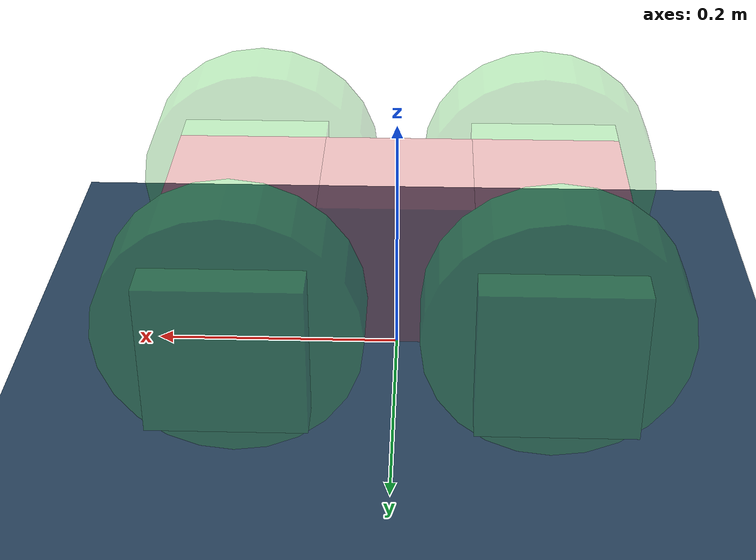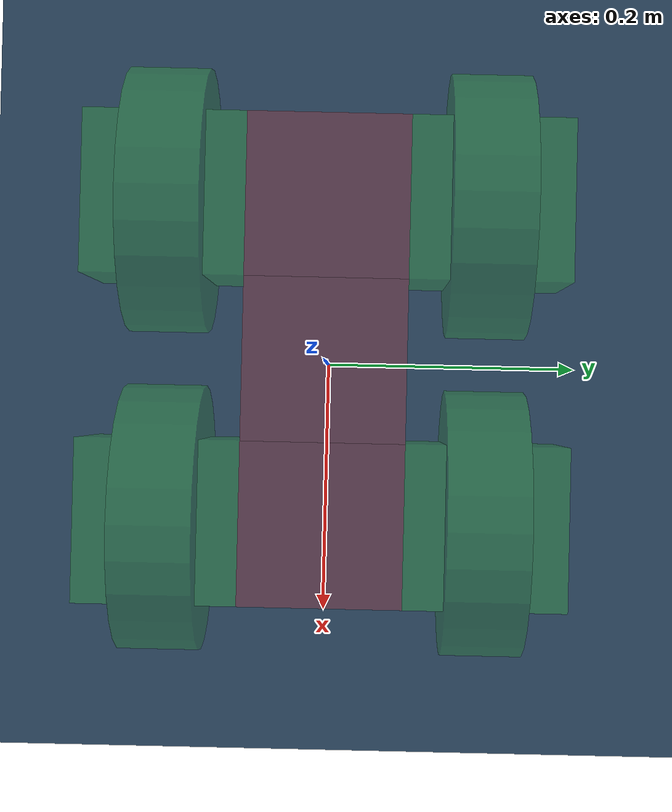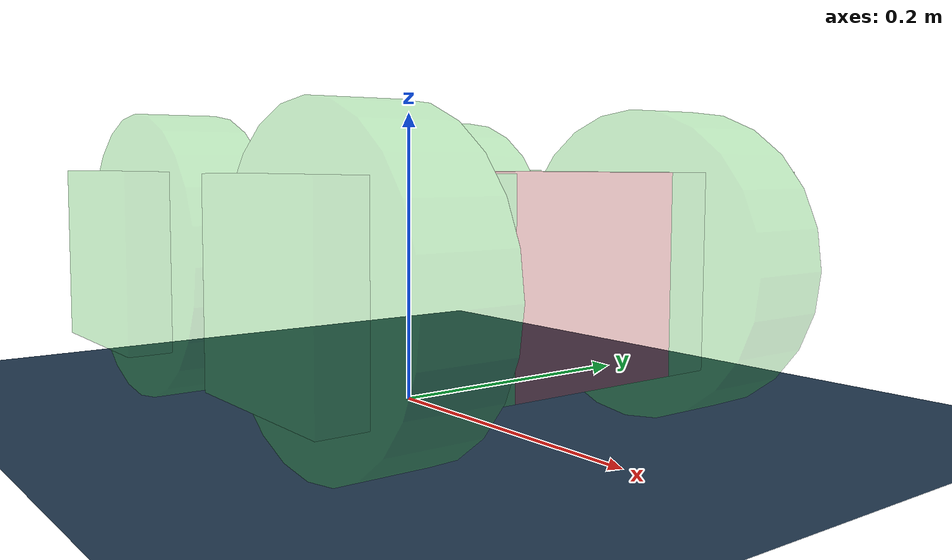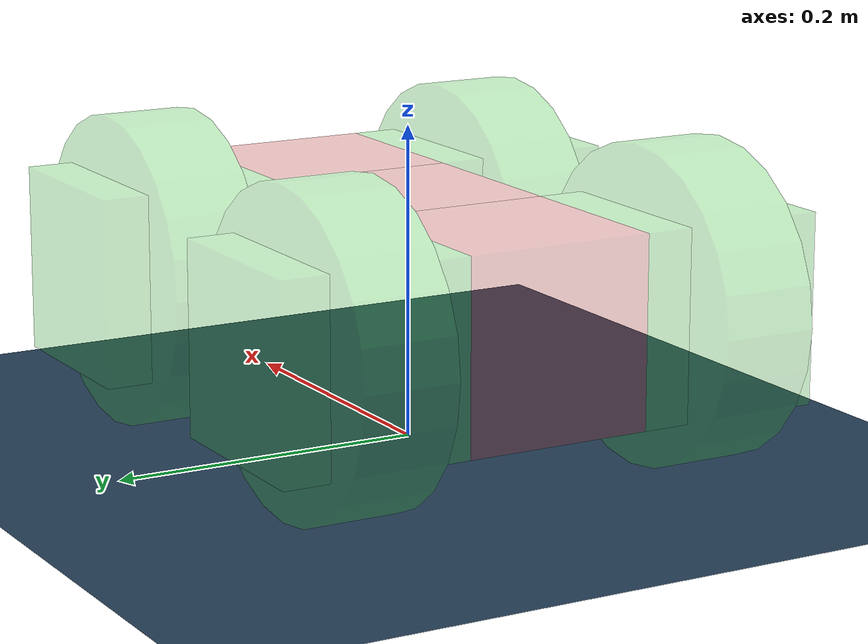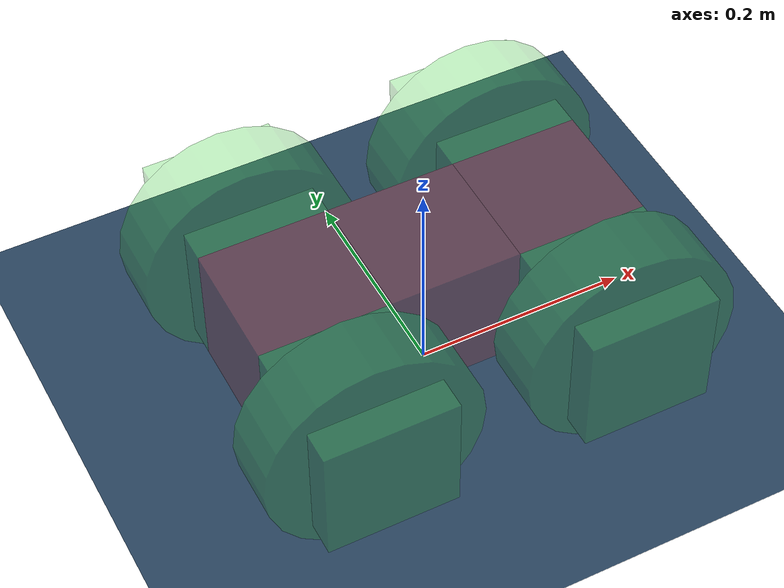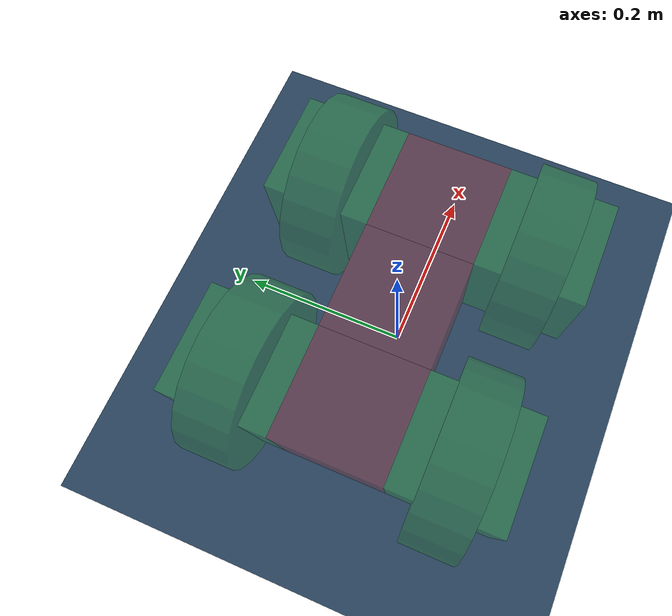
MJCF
<?xml version="1.0" encoding="utf-8"?>
<mujoco model="modular_robot">
    <compiler angle="radian" meshdir="assets" texturedir="assets" autolimits="true"/>
    <option gravity="0 0 -9.81"/>
    <statistic center="0 0 0.1" extent="0.6"/>
    <visual>
        <headlight diffuse="0.6 0.6 0.6" ambient="0.3 0.3 0.3" specular="0 0 0"/>
        <rgba haze="0.15 0.25 0.35 1"/>
        <global azimuth="140" elevation="-30"/>
    </visual>
    <asset>
        <texture type="skybox" builtin="gradient" rgb1="0.3 0.5 0.7" rgb2="0 0 0" width="512" height="3072"/>
        <texture type="2d" name="groundplane" builtin="checker" mark="edge" rgb1="0.2 0.3 0.4" rgb2="0.1 0.2 0.3" markrgb="0.8 0.8 0.8" width="300" height="300"/>
        <material name="groundplane" texture="groundplane" texuniform="true" texrepeat="5 5" reflectance="0.2"/>
    </asset>
    <default>
        <default class="base_collision">
            <geom type="box" size="0.06 0.06 0.06" pos="0 0 0" mass="0.5" contype="0" conaffinity="0" rgba="0.8 0.2 0.2 0.3"/>
        </default>
        <default class="end_collision">
            <geom type="box" size="0.06 0.06 0.06" pos="0 0 0" mass="0.5" contype="0" conaffinity="1" rgba="0.8 0.2 0.2 0.3" friction="0.6" />
        </default>
        <default class="wheel_collision">
            <geom type="box" size="0.06 0.06 0.06" pos="0 0 0" mass="0.5" contype="0" conaffinity="0" rgba="0.2 0.8 0.2 0.3"/>
        </default>
        <default class="wheel_tire_collision">
            <geom type="cylinder" size="0.1 0.03" pos="0 0 0" mass="0.5" quat="0 0 0.707 0.707" contype="0" conaffinity="1" rgba="0.2 0.8 0.2 0.3" friction="1.0"/>
        </default>
        <default class="wheel">
            <joint type="hinge" axis="0 1 0" pos="0 0 0"  limited="false" />
        </default>
        <default class="joint_motor">
            <motor ctrlrange="-100 100"/>
        </default>
        <default class="wheel_velocity">
            <position kv="10" forcelimited="true" forcerange="-500 500"/>
        </default>
    </default>

    <worldbody>
        <light pos="0 0 1.5" dir="0 0 -1" directional="true"/>
        <geom name="floor" size="0 0 0.05" type="plane" material="groundplane"/>
        <body name="module1" pos="0 0 0.1">
            <freejoint/>
            <geom class="base_collision"/>
            <body name="module2" pos="0.12 0 0">
                <geom class="base_collision"/>
                <body name="wheel1" pos="0 0.12 0">
                    <geom class="wheel_collision"/>
                    <geom class="wheel_tire_collision"/>
                    <joint class="wheel" name="wheel1_joint"/>
                </body>
                <body name="wheel2" pos="0 -0.12 0">
                    <geom class="wheel_collision"/>
                    <geom class="wheel_tire_collision"/>
                    <joint class="wheel" name="wheel2_joint"/>
                </body>
            </body>
            <body name="module3" pos="-0.12 0 0">
                <geom class="base_collision"/>
                <body name="wheel3" pos="0 0.12 0">
                    <geom class="wheel_collision"/>
                    <geom class="wheel_tire_collision"/>
                    <joint class="wheel" name="wheel3_joint"/>
                </body>
                <body name="wheel4" pos="0 -0.12 0">
                    <geom class="wheel_collision"/>
                    <geom class="wheel_tire_collision"/>
                    <joint class="wheel" name="wheel4_joint"/>
                </body>
            </body>
        </body>
    </worldbody>

    <actuator>

        <position name="wheel1" joint="wheel1_joint" class="wheel_velocity"/>
        <position name="wheel2" joint="wheel2_joint" class="wheel_velocity"/>
        <position name="wheel3" joint="wheel3_joint" class="wheel_velocity"/>
        <position name="wheel4" joint="wheel4_joint" class="wheel_velocity"/>

    </actuator>

</mujoco>
